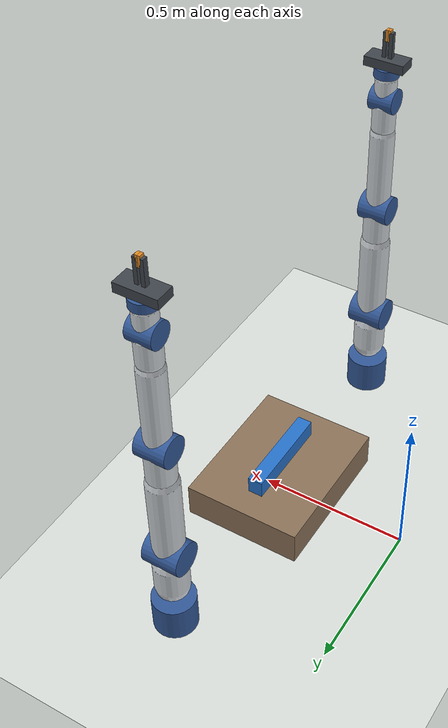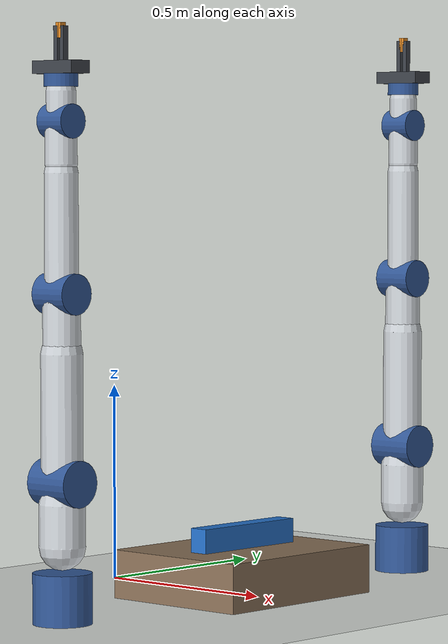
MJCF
<mujoco model="bimanual">
  <compiler angle="radian"/>

  <option impratio="10" integrator="implicitfast" cone="elliptic"/>

  <default>
    <default class="left/main">
      <default class="left/arm7">
        <joint armature="0.05" damping="0.5"/>
        <geom type="capsule" group="2" rgba="0.82 0.84 0.86 1"/>
        <site group="3"/>
        <default class="left/arm7/accent">
          <geom rgba="0.2 0.35 0.6 1"/>
        </default>
      </default>
      <default class="left/gripper/main">
        <default class="left/gripper/gripper">
          <joint type="slide" range="0 0.04" armature="0.01" damping="2"/>
          <geom group="2" rgba="0.25 0.27 0.3 1"/>
          <default class="left/gripper/gripper/pad">
            <geom size="0.008 0.004 0.018" type="box" condim="4" priority="1" friction="1.5 0.02" rgba="0.9 0.55 0.15 1"/>
          </default>
        </default>
      </default>
    </default>
    <default class="right/main">
      <default class="right/arm7">
        <joint armature="0.05" damping="0.5"/>
        <geom type="capsule" group="2" rgba="0.82 0.84 0.86 1"/>
        <site group="3"/>
        <default class="right/arm7/accent">
          <geom rgba="0.2 0.35 0.6 1"/>
        </default>
      </default>
      <default class="right/gripper/main">
        <default class="right/gripper/gripper">
          <joint type="slide" range="0 0.04" armature="0.01" damping="2"/>
          <geom group="2" rgba="0.25 0.27 0.3 1"/>
          <default class="right/gripper/gripper/pad">
            <geom size="0.008 0.004 0.018" type="box" condim="4" priority="1" friction="1.5 0.02" rgba="0.9 0.55 0.15 1"/>
          </default>
        </default>
      </default>
    </default>
  </default>

  <worldbody>
    <geom name="floor" size="1.5 1.5 0.05" type="plane" rgba="0.86 0.88 0.86 1"/>
    <geom name="table" size="0.2 0.25 0.06" pos="0.45 0 0.06" type="box" rgba="0.55 0.45 0.35 1"/>
    <light pos="0 0 2.5"/>
    <body name="box" pos="0.45 0 0.15">
      <joint name="box" type="free"/>
      <geom name="box" size="0.025 0.16 0.03" type="box" rgba="0.15 0.45 0.8 1" mass="0.4"/>
    </body>
    <frame name="left_mount" pos="0.45 0.62 0" quat="0.707107 0 0 -0.707107">
      <body name="left/link0" childclass="left/arm7">
        <geom name="left/base" class="left/arm7/accent" size="0.07 0.06" pos="0 0 0.06" quat="0 1 0 0" type="cylinder" mass="4"/>
        <body name="left/link1" pos="0 0 0.12">
          <joint name="left/j1" range="-2.9 2.9"/>
          <geom name="left/link1" size="0.055 0.05" pos="0 0 0.11" quat="0 1 0 0" mass="3"/>
          <body name="left/link2" pos="0 0 0.21">
            <joint name="left/j2" range="-1.8 1.8" axis="0 1 0"/>
            <geom name="left/link2_hub" class="left/arm7/accent" size="0.055 0.06" quat="0.707107 0.707107 0 0" type="cylinder" mass="1"/>
            <geom name="left/link2" size="0.05 0.15" pos="0 0 0.15" quat="0 1 0 0" mass="2.5"/>
            <body name="left/link3" pos="0 0 0.3">
              <joint name="left/j3" range="-2.9 2.9"/>
              <geom name="left/link3" size="0.045 0.05" pos="0 0 0.07" quat="0 1 0 0" mass="1.5"/>
              <body name="left/link4" pos="0 0 0.14">
                <joint name="left/j4" range="-0.1 2.9" axis="0 1 0"/>
                <geom name="left/link4_hub" class="left/arm7/accent" size="0.048 0.05" quat="0.707107 0.707107 0 0" type="cylinder" mass="0.8"/>
                <geom name="left/link4" size="0.04 0.14" pos="0 0 0.14" quat="0 1 0 0" mass="1.8"/>
                <body name="left/link5" pos="0 0 0.28">
                  <joint name="left/j5" range="-2.9 2.9"/>
                  <geom name="left/link5" size="0.038 0.04" pos="0 0 0.06" quat="0 1 0 0" mass="1"/>
                  <body name="left/link6" pos="0 0 0.12">
                    <joint name="left/j6" range="-2.2 2.2" axis="0 1 0"/>
                    <geom name="left/link6_hub" class="left/arm7/accent" size="0.04 0.04" quat="0.707107 0.707107 0 0" type="cylinder" mass="0.5"/>
                    <geom name="left/link6" size="0.035 0.035" pos="0 0 0.035" quat="0 1 0 0" mass="0.6"/>
                    <body name="left/link7" pos="0 0 0.08">
                      <joint name="left/j7" range="-2.9 2.9"/>
                      <geom name="left/flange" class="left/arm7/accent" size="0.04 0.015" pos="0 0 0.015" quat="0 1 0 0" type="cylinder" mass="0.3"/>
                      <site name="left/flange" pos="0 0 0.03"/>
                      <site name="left/ee" size="0.01" pos="0 0 0.13" rgba="1 0.8 0 1"/>
                      <frame pos="0 0 0.03">
                        <body name="left/gripper/hand" childclass="left/gripper/gripper">
                          <geom name="left/gripper/palm" size="0.03 0.065 0.015" pos="0 0 0.015" type="box" mass="0.4"/>
                          <site name="left/gripper/tcp" size="0.008" pos="0 0 0.1" group="3" rgba="1 0.8 0 1"/>
                          <camera name="left/gripper/wrist" quat="0 0.707107 0.707107 0" pos="0.055 0 0.02" fovy="75"/>
                          <body name="left/gripper/finger_left" pos="0 0 0.03">
                            <joint name="left/gripper/finger_left" axis="0 1 0"/>
                            <geom name="left/gripper/finger_left" size="0.008 0.006 0.04" pos="0 0.01 0.04" type="box" mass="0.05"/>
                            <geom name="left/gripper/pad_left" class="left/gripper/gripper/pad" pos="0 0.004 0.07" mass="0.01"/>
                          </body>
                          <body name="left/gripper/finger_right" pos="0 0 0.03">
                            <joint name="left/gripper/finger_right" axis="0 -1 0"/>
                            <geom name="left/gripper/finger_right" size="0.008 0.006 0.04" pos="0 -0.01 0.04" type="box" mass="0.05"/>
                            <geom name="left/gripper/pad_right" class="left/gripper/gripper/pad" pos="0 -0.004 0.07" mass="0.01"/>
                          </body>
                        </body>
                      </frame>
                    </body>
                  </body>
                </body>
              </body>
            </body>
          </body>
        </body>
      </body>
    </frame>
    <frame name="right_mount" pos="0.45 -0.62 0" quat="0.707107 0 0 0.707107">
      <body name="right/link0" childclass="right/arm7">
        <geom name="right/base" class="right/arm7/accent" size="0.07 0.06" pos="0 0 0.06" quat="0 1 0 0" type="cylinder" mass="4"/>
        <body name="right/link1" pos="0 0 0.12">
          <joint name="right/j1" range="-2.9 2.9"/>
          <geom name="right/link1" size="0.055 0.05" pos="0 0 0.11" quat="0 1 0 0" mass="3"/>
          <body name="right/link2" pos="0 0 0.21">
            <joint name="right/j2" range="-1.8 1.8" axis="0 1 0"/>
            <geom name="right/link2_hub" class="right/arm7/accent" size="0.055 0.06" quat="0.707107 0.707107 0 0" type="cylinder" mass="1"/>
            <geom name="right/link2" size="0.05 0.15" pos="0 0 0.15" quat="0 1 0 0" mass="2.5"/>
            <body name="right/link3" pos="0 0 0.3">
              <joint name="right/j3" range="-2.9 2.9"/>
              <geom name="right/link3" size="0.045 0.05" pos="0 0 0.07" quat="0 1 0 0" mass="1.5"/>
              <body name="right/link4" pos="0 0 0.14">
                <joint name="right/j4" range="-0.1 2.9" axis="0 1 0"/>
                <geom name="right/link4_hub" class="right/arm7/accent" size="0.048 0.05" quat="0.707107 0.707107 0 0" type="cylinder" mass="0.8"/>
                <geom name="right/link4" size="0.04 0.14" pos="0 0 0.14" quat="0 1 0 0" mass="1.8"/>
                <body name="right/link5" pos="0 0 0.28">
                  <joint name="right/j5" range="-2.9 2.9"/>
                  <geom name="right/link5" size="0.038 0.04" pos="0 0 0.06" quat="0 1 0 0" mass="1"/>
                  <body name="right/link6" pos="0 0 0.12">
                    <joint name="right/j6" range="-2.2 2.2" axis="0 1 0"/>
                    <geom name="right/link6_hub" class="right/arm7/accent" size="0.04 0.04" quat="0.707107 0.707107 0 0" type="cylinder" mass="0.5"/>
                    <geom name="right/link6" size="0.035 0.035" pos="0 0 0.035" quat="0 1 0 0" mass="0.6"/>
                    <body name="right/link7" pos="0 0 0.08">
                      <joint name="right/j7" range="-2.9 2.9"/>
                      <geom name="right/flange" class="right/arm7/accent" size="0.04 0.015" pos="0 0 0.015" quat="0 1 0 0" type="cylinder" mass="0.3"/>
                      <site name="right/flange" pos="0 0 0.03"/>
                      <site name="right/ee" size="0.01" pos="0 0 0.13" rgba="1 0.8 0 1"/>
                      <frame pos="0 0 0.03">
                        <body name="right/gripper/hand" childclass="right/gripper/gripper">
                          <geom name="right/gripper/palm" size="0.03 0.065 0.015" pos="0 0 0.015" type="box" mass="0.4"/>
                          <site name="right/gripper/tcp" size="0.008" pos="0 0 0.1" group="3" rgba="1 0.8 0 1"/>
                          <camera name="right/gripper/wrist" quat="0 0.707107 0.707107 0" pos="0.055 0 0.02" fovy="75"/>
                          <body name="right/gripper/finger_left" pos="0 0 0.03">
                            <joint name="right/gripper/finger_left" axis="0 1 0"/>
                            <geom name="right/gripper/finger_left" size="0.008 0.006 0.04" pos="0 0.01 0.04" type="box" mass="0.05"/>
                            <geom name="right/gripper/pad_left" class="right/gripper/gripper/pad" pos="0 0.004 0.07" mass="0.01"/>
                          </body>
                          <body name="right/gripper/finger_right" pos="0 0 0.03">
                            <joint name="right/gripper/finger_right" axis="0 -1 0"/>
                            <geom name="right/gripper/finger_right" size="0.008 0.006 0.04" pos="0 -0.01 0.04" type="box" mass="0.05"/>
                            <geom name="right/gripper/pad_right" class="right/gripper/gripper/pad" pos="0 -0.004 0.07" mass="0.01"/>
                          </body>
                        </body>
                      </frame>
                    </body>
                  </body>
                </body>
              </body>
            </body>
          </body>
        </body>
      </body>
    </frame>
  </worldbody>

  <contact>
    <exclude body1="left/gripper/finger_left" body2="left/gripper/finger_right"/>
    <exclude body1="right/gripper/finger_left" body2="right/gripper/finger_right"/>
  </contact>

  <tendon>
    <fixed name="left/gripper/grip">
      <joint joint="left/gripper/finger_left" coef="0.5"/>
      <joint joint="left/gripper/finger_right" coef="0.5"/>
    </fixed>
    <fixed name="right/gripper/grip">
      <joint joint="right/gripper/finger_left" coef="0.5"/>
      <joint joint="right/gripper/finger_right" coef="0.5"/>
    </fixed>
  </tendon>

  <equality>
    <joint name="left/gripper/mirror" joint1="left/gripper/finger_left" joint2="left/gripper/finger_right" solref="0.005"/>
    <joint name="right/gripper/mirror" joint1="right/gripper/finger_left" joint2="right/gripper/finger_right" solref="0.005"/>
  </equality>

  <actuator>
    <general name="left/a1" joint="left/j1" ctrlrange="-80 80"/>
    <general name="left/a2" joint="left/j2" ctrlrange="-80 80"/>
    <general name="left/a3" joint="left/j3" ctrlrange="-60 60"/>
    <general name="left/a4" joint="left/j4" ctrlrange="-60 60"/>
    <general name="left/a5" joint="left/j5" ctrlrange="-20 20"/>
    <general name="left/a6" joint="left/j6" ctrlrange="-20 20"/>
    <general name="left/a7" joint="left/j7" ctrlrange="-10 10"/>
    <general name="left/gripper/grip" tendon="left/gripper/grip" ctrlrange="0 0.04" forcerange="-30 30" biastype="affine" gainprm="800" biasprm="0 -800 -20"/>
    <general name="right/a1" joint="right/j1" ctrlrange="-80 80"/>
    <general name="right/a2" joint="right/j2" ctrlrange="-80 80"/>
    <general name="right/a3" joint="right/j3" ctrlrange="-60 60"/>
    <general name="right/a4" joint="right/j4" ctrlrange="-60 60"/>
    <general name="right/a5" joint="right/j5" ctrlrange="-20 20"/>
    <general name="right/a6" joint="right/j6" ctrlrange="-20 20"/>
    <general name="right/a7" joint="right/j7" ctrlrange="-10 10"/>
    <general name="right/gripper/grip" tendon="right/gripper/grip" ctrlrange="0 0.04" forcerange="-30 30" biastype="affine" gainprm="800" biasprm="0 -800 -20"/>
  </actuator>

  <sensor>
    <framepos objtype="site" objname="left/ee" name="left/ee_pos"/>
    <framequat objtype="site" objname="left/ee" name="left/ee_quat"/>

    <tendonpos tendon="left/gripper/grip" name="left/gripper/opening"/>

    <actuatorfrc actuator="left/gripper/grip" name="left/gripper/grip_force"/>
    <framepos objtype="site" objname="right/ee" name="right/ee_pos"/>
    <framequat objtype="site" objname="right/ee" name="right/ee_quat"/>

    <tendonpos tendon="right/gripper/grip" name="right/gripper/opening"/>

    <actuatorfrc actuator="right/gripper/grip" name="right/gripper/grip_force"/>
  </sensor>

  <keyframe>
    <key name="home" qpos="0.45 0 0.15 1 0 0 0 0 0.2 0 1.9 0 1.0416 0 0.04 0.04 0 0.2 0 1.9 0 1.0416 0 0.04 0.04"/>
  </keyframe>
</mujoco>
